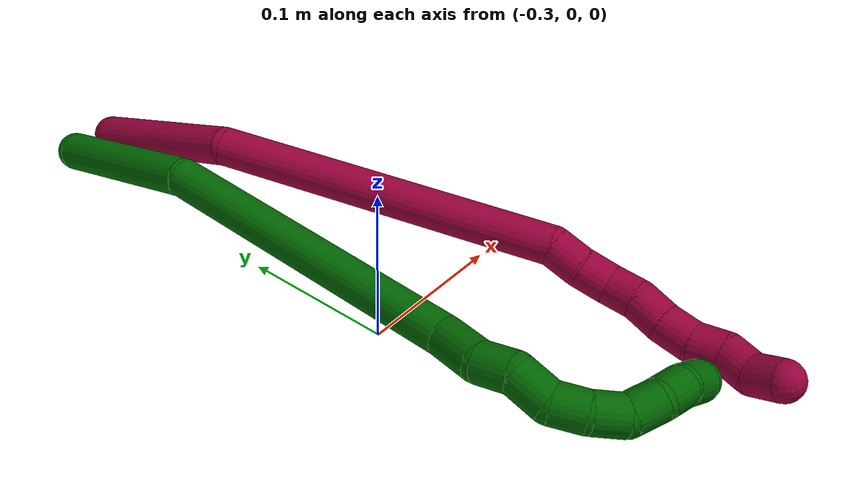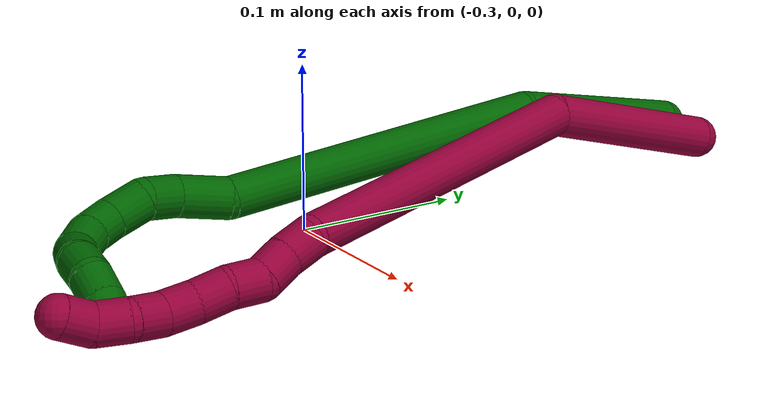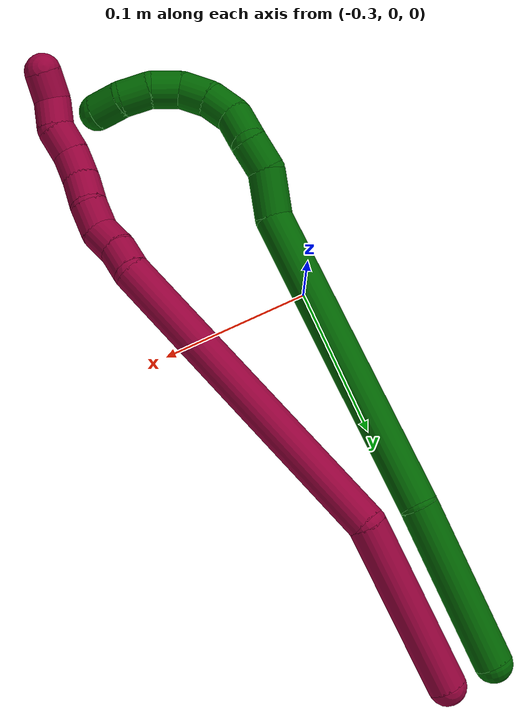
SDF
<sdf version="1.7">
 <world name="default">
  <model name="6">
   <static>0</static>
   <link name="6">
    <collision name="collision-cylinder-e_1_1_4">
     <pose>-0.008604 -0.008267 0.054281 0.151145 -0.155443 -0.011793</pose>
     <geometry><cylinder><radius>0.0125</radius><length>0.111155</length></cylinder></geometry>
     <surface>
      <friction><ode><mu>1.16</mu><mu2>1.16</mu2><slip1>0</slip1><slip2>0</slip2></ode></friction>
      <contact><ode><kp>1e+06</kp><kd>1</kd><max_vel>0</max_vel><min_depth>0.001</min_depth></ode></contact>
     </surface>
    </collision>
    <visual name="visual-cylinder-e_1_1_4">
     <pose>-0.008604 -0.008267 0.054281 0.151145 -0.155443 -0.011793</pose>
     <geometry><cylinder><radius>0.0125</radius><length>0.111155</length></cylinder></geometry>
     <material><ambient>0 0.392157 0.003922 1</ambient></material>
    </visual>
    <collision name="collision-cylinder-e_2_4_5">
     <pose>-0.060357 -0.043812 0.19985 0.290357 -0.425245 -0.063107</pose>
     <geometry><cylinder><radius>0.0125</radius><length>0.209181</length></cylinder></geometry>
     <surface>
      <friction><ode><mu>1.16</mu><mu2>1.16</mu2><slip1>0</slip1><slip2>0</slip2></ode></friction>
      <contact><ode><kp>1e+06</kp><kd>1</kd><max_vel>0</max_vel><min_depth>0.001</min_depth></ode></contact>
     </surface>
    </collision>
    <visual name="visual-cylinder-e_2_4_5">
     <pose>-0.060357 -0.043812 0.19985 0.290357 -0.425245 -0.063107</pose>
     <geometry><cylinder><radius>0.0125</radius><length>0.209181</length></cylinder></geometry>
     <material><ambient>0 0.392157 0.003922 1</ambient></material>
    </visual>
    <collision name="collision-cylinder-e_3_5_6">
     <pose>-0.108965 -0.069725 0.306016 -0.091366 -0.350351 0.016182</pose>
     <geometry><cylinder><radius>0.0125</radius><length>0.031814</length></cylinder></geometry>
     <surface>
      <friction><ode><mu>1.16</mu><mu2>1.16</mu2><slip1>0</slip1><slip2>0</slip2></ode></friction>
      <contact><ode><kp>1e+06</kp><kd>1</kd><max_vel>0</max_vel><min_depth>0.001</min_depth></ode></contact>
     </surface>
    </collision>
    <visual name="visual-cylinder-e_3_5_6">
     <pose>-0.108965 -0.069725 0.306016 -0.091366 -0.350351 0.016182</pose>
     <geometry><cylinder><radius>0.0125</radius><length>0.031814</length></cylinder></geometry>
     <material><ambient>0 0.392157 0.003922 1</ambient></material>
    </visual>
    <collision name="collision-cylinder-e_4_6_7">
     <pose>-0.116457 -0.071439 0.331342 0.286375 -0.184495 -0.026673</pose>
     <geometry><cylinder><radius>0.0125</radius><length>0.02216</length></cylinder></geometry>
     <surface>
      <friction><ode><mu>1.16</mu><mu2>1.16</mu2><slip1>0</slip1><slip2>0</slip2></ode></friction>
      <contact><ode><kp>1e+06</kp><kd>1</kd><max_vel>0</max_vel><min_depth>0.001</min_depth></ode></contact>
     </surface>
    </collision>
    <visual name="visual-cylinder-e_4_6_7">
     <pose>-0.116457 -0.071439 0.331342 0.286375 -0.184495 -0.026673</pose>
     <geometry><cylinder><radius>0.0125</radius><length>0.02216</length></cylinder></geometry>
     <material><ambient>0 0.392157 0.003922 1</ambient></material>
    </visual>
    <collision name="collision-cylinder-e_5_7_8">
     <pose>-0.125526 -0.078669 0.350136 0.461812 -0.646532 -0.1572</pose>
     <geometry><cylinder><radius>0.0125</radius><length>0.023359</length></cylinder></geometry>
     <surface>
      <friction><ode><mu>1.16</mu><mu2>1.16</mu2><slip1>0</slip1><slip2>0</slip2></ode></friction>
      <contact><ode><kp>1e+06</kp><kd>1</kd><max_vel>0</max_vel><min_depth>0.001</min_depth></ode></contact>
     </surface>
    </collision>
    <visual name="visual-cylinder-e_5_7_8">
     <pose>-0.125526 -0.078669 0.350136 0.461812 -0.646532 -0.1572</pose>
     <geometry><cylinder><radius>0.0125</radius><length>0.023359</length></cylinder></geometry>
     <material><ambient>0 0.392157 0.003922 1</ambient></material>
    </visual>
    <collision name="collision-cylinder-e_6_8_9">
     <pose>-0.13488 -0.089469 0.365947 0.727474 -0.227959 -0.087101</pose>
     <geometry><cylinder><radius>0.0125</radius><length>0.02052</length></cylinder></geometry>
     <surface>
      <friction><ode><mu>1.16</mu><mu2>1.16</mu2><slip1>0</slip1><slip2>0</slip2></ode></friction>
      <contact><ode><kp>1e+06</kp><kd>1</kd><max_vel>0</max_vel><min_depth>0.001</min_depth></ode></contact>
     </surface>
    </collision>
    <visual name="visual-cylinder-e_6_8_9">
     <pose>-0.13488 -0.089469 0.365947 0.727474 -0.227959 -0.087101</pose>
     <geometry><cylinder><radius>0.0125</radius><length>0.02052</length></cylinder></geometry>
     <material><ambient>0 0.392157 0.003922 1</ambient></material>
    </visual>
    <collision name="collision-cylinder-e_7_9_10">
     <pose>-0.138172 -0.104811 0.379312 0.974545 -0.092289 -0.048928</pose>
     <geometry><cylinder><radius>0.0125</radius><length>0.021108</length></cylinder></geometry>
     <surface>
      <friction><ode><mu>1.16</mu><mu2>1.16</mu2><slip1>0</slip1><slip2>0</slip2></ode></friction>
      <contact><ode><kp>1e+06</kp><kd>1</kd><max_vel>0</max_vel><min_depth>0.001</min_depth></ode></contact>
     </surface>
    </collision>
    <visual name="visual-cylinder-e_7_9_10">
     <pose>-0.138172 -0.104811 0.379312 0.974545 -0.092289 -0.048928</pose>
     <geometry><cylinder><radius>0.0125</radius><length>0.021108</length></cylinder></geometry>
     <material><ambient>0 0.392157 0.003922 1</ambient></material>
    </visual>
    <collision name="collision-cylinder-e_8_10_11">
     <pose>-0.135363 -0.122395 0.38882 1.18535 0.375531 0.254527</pose>
     <geometry><cylinder><radius>0.0125</radius><length>0.020621</length></cylinder></geometry>
     <surface>
      <friction><ode><mu>1.16</mu><mu2>1.16</mu2><slip1>0</slip1><slip2>0</slip2></ode></friction>
      <contact><ode><kp>1e+06</kp><kd>1</kd><max_vel>0</max_vel><min_depth>0.001</min_depth></ode></contact>
     </surface>
    </collision>
    <visual name="visual-cylinder-e_8_10_11">
     <pose>-0.135363 -0.122395 0.38882 1.18535 0.375531 0.254527</pose>
     <geometry><cylinder><radius>0.0125</radius><length>0.020621</length></cylinder></geometry>
     <material><ambient>0 0.392157 0.003922 1</ambient></material>
    </visual>
    <collision name="collision-cylinder-e_9_11_12">
     <pose>-0.128697 -0.140876 0.392862 1.5254 0.291764 0.278981</pose>
     <geometry><cylinder><radius>0.0125</radius><length>0.020052</length></cylinder></geometry>
     <surface>
      <friction><ode><mu>1.16</mu><mu2>1.16</mu2><slip1>0</slip1><slip2>0</slip2></ode></friction>
      <contact><ode><kp>1e+06</kp><kd>1</kd><max_vel>0</max_vel><min_depth>0.001</min_depth></ode></contact>
     </surface>
    </collision>
    <visual name="visual-cylinder-e_9_11_12">
     <pose>-0.128697 -0.140876 0.392862 1.5254 0.291764 0.278981</pose>
     <geometry><cylinder><radius>0.0125</radius><length>0.020052</length></cylinder></geometry>
     <material><ambient>0 0.392157 0.003922 1</ambient></material>
    </visual>
    <collision name="collision-cylinder-e_10_12_2">
     <pose>-0.12558 -0.160375 0.39185 1.71593 0.023344 0.027004</pose>
     <geometry><cylinder><radius>0.0125</radius><length>0.020031</length></cylinder></geometry>
     <surface>
      <friction><ode><mu>1.16</mu><mu2>1.16</mu2><slip1>0</slip1><slip2>0</slip2></ode></friction>
      <contact><ode><kp>1e+06</kp><kd>1</kd><max_vel>0</max_vel><min_depth>0.001</min_depth></ode></contact>
     </surface>
    </collision>
    <visual name="visual-cylinder-e_10_12_2">
     <pose>-0.12558 -0.160375 0.39185 1.71593 0.023344 0.027004</pose>
     <geometry><cylinder><radius>0.0125</radius><length>0.020031</length></cylinder></geometry>
     <material><ambient>0 0.392157 0.003922 1</ambient></material>
    </visual>
    <collision name="collision-sphere-2">
     <pose>-0.125346 -0.170283 0.390402 0 -0 0</pose>
     <geometry><sphere><radius>0.0125</radius></sphere></geometry>
     <surface>
      <friction><ode><mu>1.16</mu><mu2>1.16</mu2><slip1>0</slip1><slip2>0</slip2></ode></friction>
      <contact><ode><kp>1e+06</kp><kd>1</kd><max_vel>0</max_vel><min_depth>0.001</min_depth></ode></contact>
     </surface>
    </collision>
    <visual name="visual-sphere-2">
     <pose>-0.125346 -0.170283 0.390402 0 -0 0</pose>
     <geometry><sphere><radius>0.0125</radius></sphere></geometry>
     <material><ambient>0 0.392157 0.003922 1</ambient></material>
    </visual>
    <collision name="collision-sphere-12">
     <pose>-0.125813 -0.150468 0.393298 0 -0 0</pose>
     <geometry><sphere><radius>0.0125</radius></sphere></geometry>
     <surface>
      <friction><ode><mu>1.16</mu><mu2>1.16</mu2><slip1>0</slip1><slip2>0</slip2></ode></friction>
      <contact><ode><kp>1e+06</kp><kd>1</kd><max_vel>0</max_vel><min_depth>0.001</min_depth></ode></contact>
     </surface>
    </collision>
    <visual name="visual-sphere-12">
     <pose>-0.125813 -0.150468 0.393298 0 -0 0</pose>
     <geometry><sphere><radius>0.0125</radius></sphere></geometry>
     <material><ambient>0 0.392157 0.003922 1</ambient></material>
    </visual>
    <collision name="collision-sphere-11">
     <pose>-0.131581 -0.131283 0.392426 0 -0 0</pose>
     <geometry><sphere><radius>0.0125</radius></sphere></geometry>
     <surface>
      <friction><ode><mu>1.16</mu><mu2>1.16</mu2><slip1>0</slip1><slip2>0</slip2></ode></friction>
      <contact><ode><kp>1e+06</kp><kd>1</kd><max_vel>0</max_vel><min_depth>0.001</min_depth></ode></contact>
     </surface>
    </collision>
    <visual name="visual-sphere-11">
     <pose>-0.131581 -0.131283 0.392426 0 -0 0</pose>
     <geometry><sphere><radius>0.0125</radius></sphere></geometry>
     <material><ambient>0 0.392157 0.003922 1</ambient></material>
    </visual>
    <collision name="collision-sphere-10">
     <pose>-0.139144 -0.113507 0.385214 0 -0 0</pose>
     <geometry><sphere><radius>0.0125</radius></sphere></geometry>
     <surface>
      <friction><ode><mu>1.16</mu><mu2>1.16</mu2><slip1>0</slip1><slip2>0</slip2></ode></friction>
      <contact><ode><kp>1e+06</kp><kd>1</kd><max_vel>0</max_vel><min_depth>0.001</min_depth></ode></contact>
     </surface>
    </collision>
    <visual name="visual-sphere-10">
     <pose>-0.139144 -0.113507 0.385214 0 -0 0</pose>
     <geometry><sphere><radius>0.0125</radius></sphere></geometry>
     <material><ambient>0 0.392157 0.003922 1</ambient></material>
    </visual>
    <collision name="collision-sphere-9">
     <pose>-0.137199 -0.096116 0.373411 0 -0 0</pose>
     <geometry><sphere><radius>0.0125</radius></sphere></geometry>
     <surface>
      <friction><ode><mu>1.16</mu><mu2>1.16</mu2><slip1>0</slip1><slip2>0</slip2></ode></friction>
      <contact><ode><kp>1e+06</kp><kd>1</kd><max_vel>0</max_vel><min_depth>0.001</min_depth></ode></contact>
     </surface>
    </collision>
    <visual name="visual-sphere-9">
     <pose>-0.137199 -0.096116 0.373411 0 -0 0</pose>
     <geometry><sphere><radius>0.0125</radius></sphere></geometry>
     <material><ambient>0 0.392157 0.003922 1</ambient></material>
    </visual>
    <collision name="collision-sphere-4">
     <pose>-0.017209 -0.016535 0.108563 0 -0 0</pose>
     <geometry><sphere><radius>0.0125</radius></sphere></geometry>
     <surface>
      <friction><ode><mu>1.16</mu><mu2>1.16</mu2><slip1>0</slip1><slip2>0</slip2></ode></friction>
      <contact><ode><kp>1e+06</kp><kd>1</kd><max_vel>0</max_vel><min_depth>0.001</min_depth></ode></contact>
     </surface>
    </collision>
    <visual name="visual-sphere-4">
     <pose>-0.017209 -0.016535 0.108563 0 -0 0</pose>
     <geometry><sphere><radius>0.0125</radius></sphere></geometry>
     <material><ambient>0 0.392157 0.003922 1</ambient></material>
    </visual>
    <collision name="collision-sphere-1">
     <geometry><sphere><radius>0.0125</radius></sphere></geometry>
     <surface>
      <friction><ode><mu>1.16</mu><mu2>1.16</mu2><slip1>0</slip1><slip2>0</slip2></ode></friction>
      <contact><ode><kp>1e+06</kp><kd>1</kd><max_vel>0</max_vel><min_depth>0.001</min_depth></ode></contact>
     </surface>
    </collision>
    <visual name="visual-sphere-1">
     <geometry><sphere><radius>0.0125</radius></sphere></geometry>
     <material><ambient>0 0.392157 0.003922 1</ambient></material>
    </visual>
    <collision name="collision-sphere-8">
     <pose>-0.132562 -0.082823 0.358482 0 -0 0</pose>
     <geometry><sphere><radius>0.0125</radius></sphere></geometry>
     <surface>
      <friction><ode><mu>1.16</mu><mu2>1.16</mu2><slip1>0</slip1><slip2>0</slip2></ode></friction>
      <contact><ode><kp>1e+06</kp><kd>1</kd><max_vel>0</max_vel><min_depth>0.001</min_depth></ode></contact>
     </surface>
    </collision>
    <visual name="visual-sphere-8">
     <pose>-0.132562 -0.082823 0.358482 0 -0 0</pose>
     <geometry><sphere><radius>0.0125</radius></sphere></geometry>
     <material><ambient>0 0.392157 0.003922 1</ambient></material>
    </visual>
    <collision name="collision-sphere-5">
     <pose>-0.103505 -0.071089 0.291137 0 -0 0</pose>
     <geometry><sphere><radius>0.0125</radius></sphere></geometry>
     <surface>
      <friction><ode><mu>1.16</mu><mu2>1.16</mu2><slip1>0</slip1><slip2>0</slip2></ode></friction>
      <contact><ode><kp>1e+06</kp><kd>1</kd><max_vel>0</max_vel><min_depth>0.001</min_depth></ode></contact>
     </surface>
    </collision>
    <visual name="visual-sphere-5">
     <pose>-0.103505 -0.071089 0.291137 0 -0 0</pose>
     <geometry><sphere><radius>0.0125</radius></sphere></geometry>
     <material><ambient>0 0.392157 0.003922 1</ambient></material>
    </visual>
    <collision name="collision-sphere-6">
     <pose>-0.114425 -0.068362 0.320894 0 -0 0</pose>
     <geometry><sphere><radius>0.0125</radius></sphere></geometry>
     <surface>
      <friction><ode><mu>1.16</mu><mu2>1.16</mu2><slip1>0</slip1><slip2>0</slip2></ode></friction>
      <contact><ode><kp>1e+06</kp><kd>1</kd><max_vel>0</max_vel><min_depth>0.001</min_depth></ode></contact>
     </surface>
    </collision>
    <visual name="visual-sphere-6">
     <pose>-0.114425 -0.068362 0.320894 0 -0 0</pose>
     <geometry><sphere><radius>0.0125</radius></sphere></geometry>
     <material><ambient>0 0.392157 0.003922 1</ambient></material>
    </visual>
    <collision name="collision-sphere-7">
     <pose>-0.11849 -0.074516 0.341791 0 -0 0</pose>
     <geometry><sphere><radius>0.0125</radius></sphere></geometry>
     <surface>
      <friction><ode><mu>1.16</mu><mu2>1.16</mu2><slip1>0</slip1><slip2>0</slip2></ode></friction>
      <contact><ode><kp>1e+06</kp><kd>1</kd><max_vel>0</max_vel><min_depth>0.001</min_depth></ode></contact>
     </surface>
    </collision>
    <visual name="visual-sphere-7">
     <pose>-0.11849 -0.074516 0.341791 0 -0 0</pose>
     <geometry><sphere><radius>0.0125</radius></sphere></geometry>
     <material><ambient>0 0.392157 0.003922 1</ambient></material>
    </visual>
    <inertial>
     <pose>-0.072266 -0.056664 0.224711 0 -0 0</pose>
     <mass>0.5</mass>
     <inertia>
      <ixx>0.000777</ixx>
      <ixy>0</ixy>
      <ixz>0</ixz>
      <iyy>0.000812</iyy>
      <iyz>0</iyz>
      <izz>0.000595</izz>
     </inertia>
    </inertial>
   </link>
   <pose>-0.30684 0.267573 0.01932 0.753661 -0.960672 0.674594</pose>
  </model>
  <model name="8">
   <static>0</static>
   <link name="8">
    <collision name="collision-cylinder-e_1_1_4">
     <pose>0.011382 -0.056613 0.011426 1.37164 0.194584 0.159401</pose>
     <geometry><cylinder><radius>0.0125</radius><length>0.117732</length></cylinder></geometry>
     <surface>
      <friction><ode><mu>1.16</mu><mu2>1.16</mu2><slip1>0</slip1><slip2>0</slip2></ode></friction>
      <contact><ode><kp>1e+06</kp><kd>1</kd><max_vel>0</max_vel><min_depth>0.001</min_depth></ode></contact>
     </surface>
    </collision>
    <visual name="visual-cylinder-e_1_1_4">
     <pose>0.011382 -0.056613 0.011426 1.37164 0.194584 0.159401</pose>
     <geometry><cylinder><radius>0.0125</radius><length>0.117732</length></cylinder></geometry>
     <material><ambient>0.584314 0 0.227451 1</ambient></material>
    </visual>
    <collision name="collision-cylinder-e_2_4_5">
     <pose>0.064248 -0.212973 -0.000452 1.80032 0.384798 0.481611</pose>
     <geometry><cylinder><radius>0.0125</radius><length>0.221027</length></cylinder></geometry>
     <surface>
      <friction><ode><mu>1.16</mu><mu2>1.16</mu2><slip1>0</slip1><slip2>0</slip2></ode></friction>
      <contact><ode><kp>1e+06</kp><kd>1</kd><max_vel>0</max_vel><min_depth>0.001</min_depth></ode></contact>
     </surface>
    </collision>
    <visual name="visual-cylinder-e_2_4_5">
     <pose>0.064248 -0.212973 -0.000452 1.80032 0.384798 0.481611</pose>
     <geometry><cylinder><radius>0.0125</radius><length>0.221027</length></cylinder></geometry>
     <material><ambient>0.584314 0 0.227451 1</ambient></material>
    </visual>
    <collision name="collision-cylinder-e_3_5_6">
     <pose>0.10689 -0.321608 -0.028487 2.05976 0.11447 0.190201</pose>
     <geometry><cylinder><radius>0.0125</radius><length>0.020271</length></cylinder></geometry>
     <surface>
      <friction><ode><mu>1.16</mu><mu2>1.16</mu2><slip1>0</slip1><slip2>0</slip2></ode></friction>
      <contact><ode><kp>1e+06</kp><kd>1</kd><max_vel>0</max_vel><min_depth>0.001</min_depth></ode></contact>
     </surface>
    </collision>
    <visual name="visual-cylinder-e_3_5_6">
     <pose>0.10689 -0.321608 -0.028487 2.05976 0.11447 0.190201</pose>
     <geometry><cylinder><radius>0.0125</radius><length>0.020271</length></cylinder></geometry>
     <material><ambient>0.584314 0 0.227451 1</ambient></material>
    </visual>
    <collision name="collision-cylinder-e_4_6_7">
     <pose>0.111029 -0.338807 -0.038355 2.12466 0.296225 0.523142</pose>
     <geometry><cylinder><radius>0.0125</radius><length>0.020431</length></cylinder></geometry>
     <surface>
      <friction><ode><mu>1.16</mu><mu2>1.16</mu2><slip1>0</slip1><slip2>0</slip2></ode></friction>
      <contact><ode><kp>1e+06</kp><kd>1</kd><max_vel>0</max_vel><min_depth>0.001</min_depth></ode></contact>
     </surface>
    </collision>
    <visual name="visual-cylinder-e_4_6_7">
     <pose>0.111029 -0.338807 -0.038355 2.12466 0.296225 0.523142</pose>
     <geometry><cylinder><radius>0.0125</radius><length>0.020431</length></cylinder></geometry>
     <material><ambient>0.584314 0 0.227451 1</ambient></material>
    </visual>
    <collision name="collision-cylinder-e_5_7_8">
     <pose>0.114631 -0.357211 -0.044662 1.68597 0.06086 0.068302</pose>
     <geometry><cylinder><radius>0.0125</radius><length>0.02036</length></cylinder></geometry>
     <surface>
      <friction><ode><mu>1.16</mu><mu2>1.16</mu2><slip1>0</slip1><slip2>0</slip2></ode></friction>
      <contact><ode><kp>1e+06</kp><kd>1</kd><max_vel>0</max_vel><min_depth>0.001</min_depth></ode></contact>
     </surface>
    </collision>
    <visual name="visual-cylinder-e_5_7_8">
     <pose>0.114631 -0.357211 -0.044662 1.68597 0.06086 0.068302</pose>
     <geometry><cylinder><radius>0.0125</radius><length>0.02036</length></cylinder></geometry>
     <material><ambient>0.584314 0 0.227451 1</ambient></material>
    </visual>
    <collision name="collision-cylinder-e_6_8_9">
     <pose>0.114464 -0.376774 -0.049032 1.89685 -0.078487 -0.109338</pose>
     <geometry><cylinder><radius>0.0125</radius><length>0.020053</length></cylinder></geometry>
     <surface>
      <friction><ode><mu>1.16</mu><mu2>1.16</mu2><slip1>0</slip1><slip2>0</slip2></ode></friction>
      <contact><ode><kp>1e+06</kp><kd>1</kd><max_vel>0</max_vel><min_depth>0.001</min_depth></ode></contact>
     </surface>
    </collision>
    <visual name="visual-cylinder-e_6_8_9">
     <pose>0.114464 -0.376774 -0.049032 1.89685 -0.078487 -0.109338</pose>
     <geometry><cylinder><radius>0.0125</radius><length>0.020053</length></cylinder></geometry>
     <material><ambient>0.584314 0 0.227451 1</ambient></material>
    </visual>
    <collision name="collision-cylinder-e_7_9_10">
     <pose>0.113939 -0.396043 -0.054457 1.79391 0.026078 0.032656</pose>
     <geometry><cylinder><radius>0.0125</radius><length>0.020104</length></cylinder></geometry>
     <surface>
      <friction><ode><mu>1.16</mu><mu2>1.16</mu2><slip1>0</slip1><slip2>0</slip2></ode></friction>
      <contact><ode><kp>1e+06</kp><kd>1</kd><max_vel>0</max_vel><min_depth>0.001</min_depth></ode></contact>
     </surface>
    </collision>
    <visual name="visual-cylinder-e_7_9_10">
     <pose>0.113939 -0.396043 -0.054457 1.79391 0.026078 0.032656</pose>
     <geometry><cylinder><radius>0.0125</radius><length>0.020104</length></cylinder></geometry>
     <material><ambient>0.584314 0 0.227451 1</ambient></material>
    </visual>
    <collision name="collision-cylinder-e_8_10_11">
     <pose>0.116477 -0.41558 -0.056908 1.59416 0.229529 0.234906</pose>
     <geometry><cylinder><radius>0.0125</radius><length>0.020006</length></cylinder></geometry>
     <surface>
      <friction><ode><mu>1.16</mu><mu2>1.16</mu2><slip1>0</slip1><slip2>0</slip2></ode></friction>
      <contact><ode><kp>1e+06</kp><kd>1</kd><max_vel>0</max_vel><min_depth>0.001</min_depth></ode></contact>
     </surface>
    </collision>
    <visual name="visual-cylinder-e_8_10_11">
     <pose>0.116477 -0.41558 -0.056908 1.59416 0.229529 0.234906</pose>
     <geometry><cylinder><radius>0.0125</radius><length>0.020006</length></cylinder></geometry>
     <material><ambient>0.584314 0 0.227451 1</ambient></material>
    </visual>
    <collision name="collision-cylinder-e_9_11_12">
     <pose>0.116802 -0.43511 -0.057722 1.63059 -0.196394 -0.208417</pose>
     <geometry><cylinder><radius>0.0125</radius><length>0.020003</length></cylinder></geometry>
     <surface>
      <friction><ode><mu>1.16</mu><mu2>1.16</mu2><slip1>0</slip1><slip2>0</slip2></ode></friction>
      <contact><ode><kp>1e+06</kp><kd>1</kd><max_vel>0</max_vel><min_depth>0.001</min_depth></ode></contact>
     </surface>
    </collision>
    <visual name="visual-cylinder-e_9_11_12">
     <pose>0.116802 -0.43511 -0.057722 1.63059 -0.196394 -0.208417</pose>
     <geometry><cylinder><radius>0.0125</radius><length>0.020003</length></cylinder></geometry>
     <material><ambient>0.584314 0 0.227451 1</ambient></material>
    </visual>
    <collision name="collision-cylinder-e_10_12_2">
     <pose>0.115504 -0.45437 -0.055139 1.24782 0.06544 0.047114</pose>
     <geometry><cylinder><radius>0.0125</radius><length>0.020013</length></cylinder></geometry>
     <surface>
      <friction><ode><mu>1.16</mu><mu2>1.16</mu2><slip1>0</slip1><slip2>0</slip2></ode></friction>
      <contact><ode><kp>1e+06</kp><kd>1</kd><max_vel>0</max_vel><min_depth>0.001</min_depth></ode></contact>
     </surface>
    </collision>
    <visual name="visual-cylinder-e_10_12_2">
     <pose>0.115504 -0.45437 -0.055139 1.24782 0.06544 0.047114</pose>
     <geometry><cylinder><radius>0.0125</radius><length>0.020013</length></cylinder></geometry>
     <material><ambient>0.584314 0 0.227451 1</ambient></material>
    </visual>
    <collision name="collision-sphere-2">
     <pose>0.116159 -0.463839 -0.051969 0 -0 0</pose>
     <geometry><sphere><radius>0.0125</radius></sphere></geometry>
     <surface>
      <friction><ode><mu>1.16</mu><mu2>1.16</mu2><slip1>0</slip1><slip2>0</slip2></ode></friction>
      <contact><ode><kp>1e+06</kp><kd>1</kd><max_vel>0</max_vel><min_depth>0.001</min_depth></ode></contact>
     </surface>
    </collision>
    <visual name="visual-sphere-2">
     <pose>0.116159 -0.463839 -0.051969 0 -0 0</pose>
     <geometry><sphere><radius>0.0125</radius></sphere></geometry>
     <material><ambient>0.584314 0 0.227451 1</ambient></material>
    </visual>
    <collision name="collision-sphere-12">
     <pose>0.11485 -0.444901 -0.058308 0 -0 0</pose>
     <geometry><sphere><radius>0.0125</radius></sphere></geometry>
     <surface>
      <friction><ode><mu>1.16</mu><mu2>1.16</mu2><slip1>0</slip1><slip2>0</slip2></ode></friction>
      <contact><ode><kp>1e+06</kp><kd>1</kd><max_vel>0</max_vel><min_depth>0.001</min_depth></ode></contact>
     </surface>
    </collision>
    <visual name="visual-sphere-12">
     <pose>0.11485 -0.444901 -0.058308 0 -0 0</pose>
     <geometry><sphere><radius>0.0125</radius></sphere></geometry>
     <material><ambient>0.584314 0 0.227451 1</ambient></material>
    </visual>
    <collision name="collision-sphere-11">
     <pose>0.118753 -0.425318 -0.057135 0 -0 0</pose>
     <geometry><sphere><radius>0.0125</radius></sphere></geometry>
     <surface>
      <friction><ode><mu>1.16</mu><mu2>1.16</mu2><slip1>0</slip1><slip2>0</slip2></ode></friction>
      <contact><ode><kp>1e+06</kp><kd>1</kd><max_vel>0</max_vel><min_depth>0.001</min_depth></ode></contact>
     </surface>
    </collision>
    <visual name="visual-sphere-11">
     <pose>0.118753 -0.425318 -0.057135 0 -0 0</pose>
     <geometry><sphere><radius>0.0125</radius></sphere></geometry>
     <material><ambient>0.584314 0 0.227451 1</ambient></material>
    </visual>
    <collision name="collision-sphere-10">
     <pose>0.114202 -0.405842 -0.05668 0 -0 0</pose>
     <geometry><sphere><radius>0.0125</radius></sphere></geometry>
     <surface>
      <friction><ode><mu>1.16</mu><mu2>1.16</mu2><slip1>0</slip1><slip2>0</slip2></ode></friction>
      <contact><ode><kp>1e+06</kp><kd>1</kd><max_vel>0</max_vel><min_depth>0.001</min_depth></ode></contact>
     </surface>
    </collision>
    <visual name="visual-sphere-10">
     <pose>0.114202 -0.405842 -0.05668 0 -0 0</pose>
     <geometry><sphere><radius>0.0125</radius></sphere></geometry>
     <material><ambient>0.584314 0 0.227451 1</ambient></material>
    </visual>
    <collision name="collision-sphere-9">
     <pose>0.113677 -0.386243 -0.052233 0 -0 0</pose>
     <geometry><sphere><radius>0.0125</radius></sphere></geometry>
     <surface>
      <friction><ode><mu>1.16</mu><mu2>1.16</mu2><slip1>0</slip1><slip2>0</slip2></ode></friction>
      <contact><ode><kp>1e+06</kp><kd>1</kd><max_vel>0</max_vel><min_depth>0.001</min_depth></ode></contact>
     </surface>
    </collision>
    <visual name="visual-sphere-9">
     <pose>0.113677 -0.386243 -0.052233 0 -0 0</pose>
     <geometry><sphere><radius>0.0125</radius></sphere></geometry>
     <material><ambient>0.584314 0 0.227451 1</ambient></material>
    </visual>
    <collision name="collision-sphere-4">
     <pose>0.022764 -0.113227 0.022853 0 -0 0</pose>
     <geometry><sphere><radius>0.0125</radius></sphere></geometry>
     <surface>
      <friction><ode><mu>1.16</mu><mu2>1.16</mu2><slip1>0</slip1><slip2>0</slip2></ode></friction>
      <contact><ode><kp>1e+06</kp><kd>1</kd><max_vel>0</max_vel><min_depth>0.001</min_depth></ode></contact>
     </surface>
    </collision>
    <visual name="visual-sphere-4">
     <pose>0.022764 -0.113227 0.022853 0 -0 0</pose>
     <geometry><sphere><radius>0.0125</radius></sphere></geometry>
     <material><ambient>0.584314 0 0.227451 1</ambient></material>
    </visual>
    <collision name="collision-sphere-1">
     <geometry><sphere><radius>0.0125</radius></sphere></geometry>
     <surface>
      <friction><ode><mu>1.16</mu><mu2>1.16</mu2><slip1>0</slip1><slip2>0</slip2></ode></friction>
      <contact><ode><kp>1e+06</kp><kd>1</kd><max_vel>0</max_vel><min_depth>0.001</min_depth></ode></contact>
     </surface>
    </collision>
    <visual name="visual-sphere-1">
     <geometry><sphere><radius>0.0125</radius></sphere></geometry>
     <material><ambient>0.584314 0 0.227451 1</ambient></material>
    </visual>
    <collision name="collision-sphere-8">
     <pose>0.11525 -0.367305 -0.04583 0 -0 0</pose>
     <geometry><sphere><radius>0.0125</radius></sphere></geometry>
     <surface>
      <friction><ode><mu>1.16</mu><mu2>1.16</mu2><slip1>0</slip1><slip2>0</slip2></ode></friction>
      <contact><ode><kp>1e+06</kp><kd>1</kd><max_vel>0</max_vel><min_depth>0.001</min_depth></ode></contact>
     </surface>
    </collision>
    <visual name="visual-sphere-8">
     <pose>0.11525 -0.367305 -0.04583 0 -0 0</pose>
     <geometry><sphere><radius>0.0125</radius></sphere></geometry>
     <material><ambient>0.584314 0 0.227451 1</ambient></material>
    </visual>
    <collision name="collision-sphere-5">
     <pose>0.105732 -0.312719 -0.023757 0 -0 0</pose>
     <geometry><sphere><radius>0.0125</radius></sphere></geometry>
     <surface>
      <friction><ode><mu>1.16</mu><mu2>1.16</mu2><slip1>0</slip1><slip2>0</slip2></ode></friction>
      <contact><ode><kp>1e+06</kp><kd>1</kd><max_vel>0</max_vel><min_depth>0.001</min_depth></ode></contact>
     </surface>
    </collision>
    <visual name="visual-sphere-5">
     <pose>0.105732 -0.312719 -0.023757 0 -0 0</pose>
     <geometry><sphere><radius>0.0125</radius></sphere></geometry>
     <material><ambient>0.584314 0 0.227451 1</ambient></material>
    </visual>
    <collision name="collision-sphere-6">
     <pose>0.108047 -0.330497 -0.033216 0 -0 0</pose>
     <geometry><sphere><radius>0.0125</radius></sphere></geometry>
     <surface>
      <friction><ode><mu>1.16</mu><mu2>1.16</mu2><slip1>0</slip1><slip2>0</slip2></ode></friction>
      <contact><ode><kp>1e+06</kp><kd>1</kd><max_vel>0</max_vel><min_depth>0.001</min_depth></ode></contact>
     </surface>
    </collision>
    <visual name="visual-sphere-6">
     <pose>0.108047 -0.330497 -0.033216 0 -0 0</pose>
     <geometry><sphere><radius>0.0125</radius></sphere></geometry>
     <material><ambient>0.584314 0 0.227451 1</ambient></material>
    </visual>
    <collision name="collision-sphere-7">
     <pose>0.114011 -0.347117 -0.043494 0 -0 0</pose>
     <geometry><sphere><radius>0.0125</radius></sphere></geometry>
     <surface>
      <friction><ode><mu>1.16</mu><mu2>1.16</mu2><slip1>0</slip1><slip2>0</slip2></ode></friction>
      <contact><ode><kp>1e+06</kp><kd>1</kd><max_vel>0</max_vel><min_depth>0.001</min_depth></ode></contact>
     </surface>
    </collision>
    <visual name="visual-sphere-7">
     <pose>0.114011 -0.347117 -0.043494 0 -0 0</pose>
     <geometry><sphere><radius>0.0125</radius></sphere></geometry>
     <material><ambient>0.584314 0 0.227451 1</ambient></material>
    </visual>
    <inertial>
     <pose>0.067748 -0.232161 -0.012999 0 -0 0</pose>
     <mass>0.5</mass>
     <inertia>
      <ixx>0.001316</ixx>
      <ixy>0</ixy>
      <ixz>0</ixz>
      <iyy>0.000377</iyy>
      <iyz>0</iyz>
      <izz>0.000593</izz>
     </inertia>
    </inertial>
   </link>
   <pose>-0.274461 0.268464 0.016961 -0.070337 -0.194366 -0.100003</pose>
  </model>
 </world>
</sdf>
